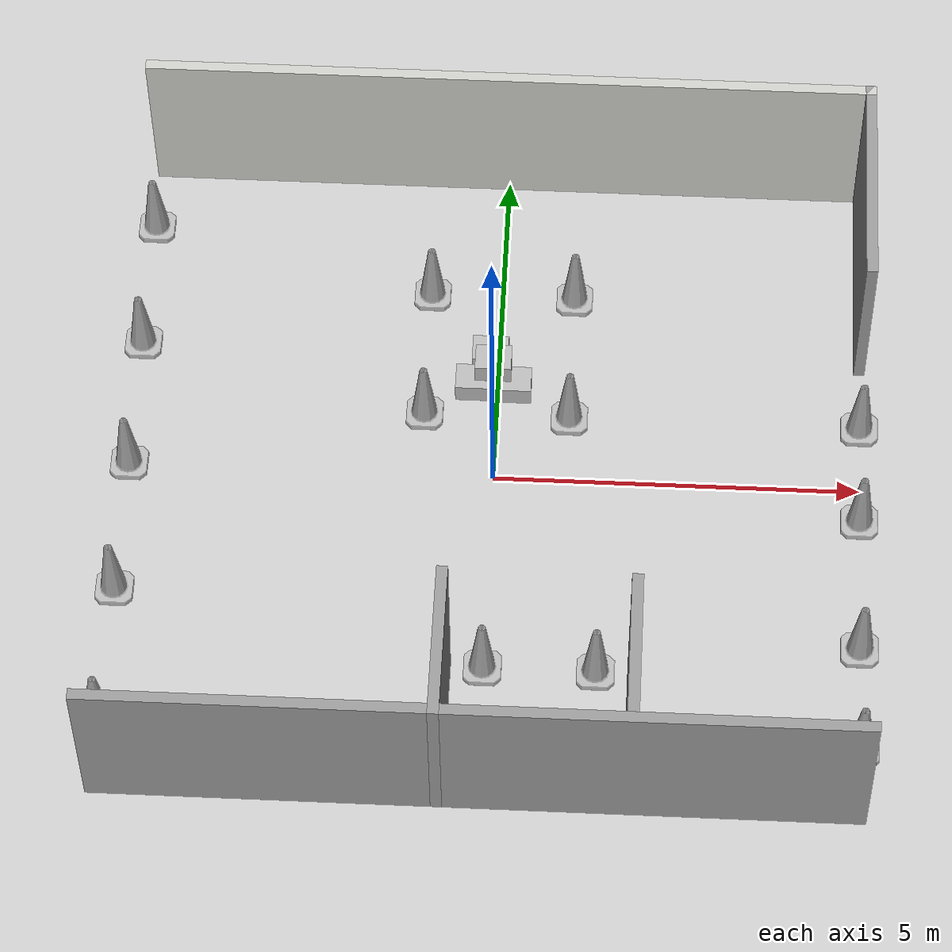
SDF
<sdf version="1.7">
 <world name="default">
  <light name="sun" type="directional">
   <pose>0 0 10 0 -0 0</pose>
   <diffuse>0.8 0.8 0.8 1</diffuse>
   <specular>0.2 0.2 0.2 1</specular>
   <attenuation>
    <range>1000</range>
    <constant>0.9</constant>
    <linear>0.01</linear>
    <quadratic>0.001</quadratic>
   </attenuation>
   <direction>-0.5 0.1 -0.9</direction>
   <spot><inner_angle>0</inner_angle><outer_angle>0</outer_angle><falloff>0</falloff></spot>
  </light>
  <model name="ground_plane">
   <static>1</static>
   <link name="link">
    <collision name="collision">
     <geometry><plane><normal>0 0 1</normal><size>100 100</size></plane></geometry>
     <surface>
      <contact><collide_bitmask>65535</collide_bitmask></contact>
      <friction><ode><mu>100</mu><mu2>50</mu2></ode></friction>
     </surface>
    </collision>
    <visual name="visual">
     <cast_shadows>0</cast_shadows>
     <geometry><plane><normal>0 0 1</normal><size>100 100</size></plane></geometry>
     <material>
      <script><uri>file://media/materials/scripts/gazebo.material</uri><name>Gazebo/Grey</name></script>
     </material>
    </visual>
   </link>
  </model>
  <physics type="ode">
   <real_time_update_rate>1000</real_time_update_rate>
   <max_step_size>0.001</max_step_size>
   <real_time_factor>1</real_time_factor>
   <ode>
    <solver>
     <type>quick</type>
     <iters>150</iters>
     <precon_iters>0</precon_iters>
     <sor>1.4</sor>
     <use_dynamic_moi_rescaling>1</use_dynamic_moi_rescaling>
    </solver>
    <constraints>
     <cfm>1e-05</cfm>
     <erp>0.2</erp>
     <contact_max_correcting_vel>2000</contact_max_correcting_vel>
     <contact_surface_layer>0.01</contact_surface_layer>
    </constraints>
   </ode>
  </physics>
  <scene><ambient>0.4 0.4 0.4 1</ambient><background>0.7 0.7 0.7 1</background><shadows>1</shadows></scene>
  <gravity>0 0 -9.8</gravity>
  <magnetic_field>6e-06 2.3e-05 -4.2e-05</magnetic_field>
  <atmosphere type="adiabatic"/>
  <spherical_coordinates>
   <surface_model>EARTH_WGS84</surface_model>
   <latitude_deg>0</latitude_deg>
   <longitude_deg>0</longitude_deg>
   <elevation>0</elevation>
   <heading_deg>0</heading_deg>
  </spherical_coordinates>
  <model name="Untitled">
   <link name="Wall_19">
    <collision name="Wall_19_Collision">
     <geometry><box><size>10.15 0.15 2.5</size></box></geometry>
     <pose>0 0 1.25 0 -0 0</pose>
    </collision>
    <visual name="Wall_19_Visual">
     <pose>0 0 1.25 0 -0 0</pose>
     <geometry><box><size>10.15 0.15 2.5</size></box></geometry>
     <material>
      <script><uri>file://media/materials/scripts/gazebo.material</uri><name>Gazebo/CeilingTiled</name></script>
      <ambient>1 1 1 1</ambient>
     </material>
     <meta><layer>0</layer></meta>
    </visual>
    <pose>-0 5 0 0 -0 0</pose>
   </link>
   <link name="Wall_26">
    <collision name="Wall_26_Collision">
     <geometry><box><size>10.15 0.15 2.5</size></box></geometry>
     <pose>0 0 1.25 0 -0 0</pose>
    </collision>
    <visual name="Wall_26_Visual">
     <pose>0 0 1.25 0 -0 0</pose>
     <geometry><box><size>10.15 0.15 2.5</size></box></geometry>
     <material>
      <script><uri>file://media/materials/scripts/gazebo.material</uri><name>Gazebo/Grey</name></script>
      <ambient>1 1 1 1</ambient>
     </material>
     <meta><layer>0</layer></meta>
    </visual>
    <pose>-0 -5 0 0 -0 3.14159</pose>
   </link>
   <link name="Wall_29">
    <collision name="Wall_29_Collision">
     <geometry><box><size>3.15 0.15 2.5</size></box></geometry>
     <pose>0 0 1.25 0 -0 0</pose>
    </collision>
    <visual name="Wall_29_Visual">
     <pose>0 0 1.25 0 -0 0</pose>
     <geometry><box><size>3.15 0.15 2.5</size></box></geometry>
     <material>
      <script><uri>file://media/materials/scripts/gazebo.material</uri><name>Gazebo/Grey</name></script>
      <ambient>1 1 1 1</ambient>
     </material>
     <meta><layer>0</layer></meta>
    </visual>
    <pose>5 3.5 0 0 -0 -1.5708</pose>
   </link>
   <link name="Wall_31">
    <collision name="Wall_31_Collision">
     <geometry><box><size>2.15 0.15 2.5</size></box></geometry>
     <pose>0 0 1.25 0 -0 0</pose>
    </collision>
    <visual name="Wall_31_Visual">
     <pose>0 0 1.25 0 -0 0</pose>
     <geometry><box><size>2.15 0.15 2.5</size></box></geometry>
     <material>
      <script><uri>file://media/materials/scripts/gazebo.material</uri><name>Gazebo/Grey</name></script>
      <ambient>1 1 1 1</ambient>
     </material>
     <meta><layer>0</layer></meta>
    </visual>
    <pose>2 -4 0 0 -0 -1.5708</pose>
   </link>
   <link name="Wall_33">
    <collision name="Wall_33_Collision">
     <geometry><box><size>2.15 0.15 2.5</size></box></geometry>
     <pose>0 0 1.25 0 -0 0</pose>
    </collision>
    <visual name="Wall_33_Visual">
     <pose>0 0 1.25 0 -0 0</pose>
     <geometry><box><size>2.15 0.15 2.5</size></box></geometry>
     <material>
      <script><uri>file://media/materials/scripts/gazebo.material</uri><name>Gazebo/Grey</name></script>
      <ambient>1 1 1 1</ambient>
     </material>
     <meta><layer>0</layer></meta>
    </visual>
    <pose>-0.5 -4 0 0 -0 1.5708</pose>
   </link>
   <static>1</static>
  </model>
  <model name="cardboard_box">
   <pose>-0.075772 1.6 0.447999 0 -0 0</pose>
   <link name="link">
    <inertial>
     <mass>2</mass>
     <inertia>
      <ixx>0.0416667</ixx>
      <ixy>0</ixy>
      <ixz>0</ixz>
      <iyy>0.0566667</iyy>
      <iyz>0</iyz>
      <izz>0.0683333</izz>
     </inertia>
    </inertial>
    <collision name="collision">
     <geometry><box><size>0.5 0.4 0.3</size></box></geometry>
     <surface>
      <friction><ode><mu>1</mu><mu2>1</mu2></ode></friction>
      <contact><ode><kp>1e+07</kp><kd>1</kd><min_depth>0.001</min_depth><max_vel>0.1</max_vel></ode></contact>
     </surface>
    </collision>
    <visual name="visual">
     <pose>0 0 -0.15 0 -0 0</pose>
     <geometry>
      <mesh><uri>model://cardboard_box/meshes/cardboard_box.dae</uri><scale>1.25932 1.00745 0.755591</scale></mesh>
     </geometry>
    </visual>
   </link>
  </model>
  <model name="cardboard_box_clone">
   <pose>0.204219 1.45053 0.148999 -0 -0 -0</pose>
   <link name="link">
    <inertial>
     <mass>2</mass>
     <inertia>
      <ixx>0.0416667</ixx>
      <ixy>0</ixy>
      <ixz>0</ixz>
      <iyy>0.0566667</iyy>
      <iyz>0</iyz>
      <izz>0.0683333</izz>
     </inertia>
    </inertial>
    <collision name="collision">
     <geometry><box><size>0.5 0.4 0.3</size></box></geometry>
     <surface>
      <friction><ode><mu>1</mu><mu2>1</mu2></ode></friction>
      <contact><ode><kp>1e+07</kp><kd>1</kd><min_depth>0.001</min_depth><max_vel>0.1</max_vel></ode></contact>
     </surface>
    </collision>
    <visual name="visual">
     <pose>0 0 -0.15 0 -0 0</pose>
     <geometry>
      <mesh><uri>model://cardboard_box/meshes/cardboard_box.dae</uri><scale>1.25932 1.00745 0.755591</scale></mesh>
     </geometry>
    </visual>
   </link>
  </model>
  <model name="cardboard_box_clone_0">
   <pose>-0.343051 1.46668 0.148999 0 -0 0</pose>
   <link name="link">
    <inertial>
     <mass>2</mass>
     <inertia>
      <ixx>0.0416667</ixx>
      <ixy>0</ixy>
      <ixz>0</ixz>
      <iyy>0.0566667</iyy>
      <iyz>0</iyz>
      <izz>0.0683333</izz>
     </inertia>
    </inertial>
    <collision name="collision">
     <geometry><box><size>0.5 0.4 0.3</size></box></geometry>
     <surface>
      <friction><ode><mu>1</mu><mu2>1</mu2></ode></friction>
      <contact><ode><kp>1e+07</kp><kd>1</kd><min_depth>0.001</min_depth><max_vel>0.1</max_vel></ode></contact>
     </surface>
    </collision>
    <visual name="visual">
     <pose>0 0 -0.15 0 -0 0</pose>
     <geometry>
      <mesh><uri>model://cardboard_box/meshes/cardboard_box.dae</uri><scale>1.25932 1.00745 0.755591</scale></mesh>
     </geometry>
    </visual>
   </link>
  </model>
  <model name="cardboard_box_clone_0_clone">
   <pose>-0.134875 1.95564 0.148999 1e-06 -0 0</pose>
   <link name="link">
    <inertial>
     <mass>2</mass>
     <inertia>
      <ixx>0.0416667</ixx>
      <ixy>0</ixy>
      <ixz>0</ixz>
      <iyy>0.0566667</iyy>
      <iyz>0</iyz>
      <izz>0.0683333</izz>
     </inertia>
    </inertial>
    <collision name="collision">
     <geometry><box><size>0.5 0.4 0.3</size></box></geometry>
     <surface>
      <friction><ode><mu>1</mu><mu2>1</mu2></ode></friction>
      <contact><ode><kp>1e+07</kp><kd>1</kd><min_depth>0.001</min_depth><max_vel>0.1</max_vel></ode></contact>
     </surface>
    </collision>
    <visual name="visual">
     <pose>0 0 -0.15 0 -0 0</pose>
     <geometry>
      <mesh><uri>model://cardboard_box/meshes/cardboard_box.dae</uri><scale>1.25932 1.00745 0.755591</scale></mesh>
     </geometry>
    </visual>
   </link>
  </model>
  <model name="Construction Cone_clone_clone">
   <link name="link">
    <collision name="collision">
     <geometry>
      <mesh><scale>10 10 10</scale><uri>model://construction_cone/meshes/construction_cone.dae</uri></mesh>
     </geometry>
    </collision>
    <visual name="visual">
     <geometry>
      <mesh><scale>10 10 10</scale><uri>model://construction_cone/meshes/construction_cone.dae</uri></mesh>
     </geometry>
    </visual>
    <inertial>
     <inertia><ixx>1</ixx><ixy>0</ixy><ixz>0</ixz><iyy>1</iyy><iyz>0</iyz><izz>1</izz></inertia>
     <mass>1</mass>
    </inertial>
   </link>
   <pose>-5 0 -4e-06 3e-06 3e-06 0</pose>
  </model>
  <model name="Construction Cone_clone_clone_0">
   <link name="link">
    <collision name="collision">
     <geometry>
      <mesh><scale>10 10 10</scale><uri>model://construction_cone/meshes/construction_cone.dae</uri></mesh>
     </geometry>
    </collision>
    <visual name="visual">
     <geometry>
      <mesh><scale>10 10 10</scale><uri>model://construction_cone/meshes/construction_cone.dae</uri></mesh>
     </geometry>
    </visual>
    <inertial>
     <inertia><ixx>1</ixx><ixy>0</ixy><ixz>0</ixz><iyy>1</iyy><iyz>0</iyz><izz>1</izz></inertia>
     <mass>1</mass>
    </inertial>
   </link>
   <pose>-5 -2 -0 0 -0 0</pose>
  </model>
  <model name="Construction Cone_clone_clone_1">
   <link name="link">
    <collision name="collision">
     <geometry>
      <mesh><scale>10 10 10</scale><uri>model://construction_cone/meshes/construction_cone.dae</uri></mesh>
     </geometry>
    </collision>
    <visual name="visual">
     <geometry>
      <mesh><scale>10 10 10</scale><uri>model://construction_cone/meshes/construction_cone.dae</uri></mesh>
     </geometry>
    </visual>
    <inertial>
     <inertia><ixx>1</ixx><ixy>0</ixy><ixz>0</ixz><iyy>1</iyy><iyz>0</iyz><izz>1</izz></inertia>
     <mass>1</mass>
    </inertial>
   </link>
   <pose>-5 -4 -0 -1e-06 1e-06 0</pose>
  </model>
  <model name="Construction Cone_clone_clone_2">
   <link name="link">
    <collision name="collision">
     <geometry>
      <mesh><scale>10 10 10</scale><uri>model://construction_cone/meshes/construction_cone.dae</uri></mesh>
     </geometry>
    </collision>
    <visual name="visual">
     <geometry>
      <mesh><scale>10 10 10</scale><uri>model://construction_cone/meshes/construction_cone.dae</uri></mesh>
     </geometry>
    </visual>
    <inertial>
     <inertia><ixx>1</ixx><ixy>0</ixy><ixz>0</ixz><iyy>1</iyy><iyz>0</iyz><izz>1</izz></inertia>
     <mass>1</mass>
    </inertial>
   </link>
   <pose>1 3 0 0 -0 0</pose>
  </model>
  <model name="Construction Cone_clone_clone_3">
   <link name="link">
    <collision name="collision">
     <geometry>
      <mesh><scale>10 10 10</scale><uri>model://construction_cone/meshes/construction_cone.dae</uri></mesh>
     </geometry>
    </collision>
    <visual name="visual">
     <geometry>
      <mesh><scale>10 10 10</scale><uri>model://construction_cone/meshes/construction_cone.dae</uri></mesh>
     </geometry>
    </visual>
    <inertial>
     <inertia><ixx>1</ixx><ixy>0</ixy><ixz>0</ixz><iyy>1</iyy><iyz>0</iyz><izz>1</izz></inertia>
     <mass>1</mass>
    </inertial>
   </link>
   <pose>1 1 -0 1e-06 1e-06 0</pose>
  </model>
  <model name="Construction Cone_clone_clone_4">
   <link name="link">
    <collision name="collision">
     <geometry>
      <mesh><scale>10 10 10</scale><uri>model://construction_cone/meshes/construction_cone.dae</uri></mesh>
     </geometry>
    </collision>
    <visual name="visual">
     <geometry>
      <mesh><scale>10 10 10</scale><uri>model://construction_cone/meshes/construction_cone.dae</uri></mesh>
     </geometry>
    </visual>
    <inertial>
     <inertia><ixx>1</ixx><ixy>0</ixy><ixz>0</ixz><iyy>1</iyy><iyz>0</iyz><izz>1</izz></inertia>
     <mass>1</mass>
    </inertial>
   </link>
   <pose>-1 1 -0 0 -0 0</pose>
  </model>
  <model name="Construction Cone_clone_clone_5">
   <link name="link">
    <collision name="collision">
     <geometry>
      <mesh><scale>10 10 10</scale><uri>model://construction_cone/meshes/construction_cone.dae</uri></mesh>
     </geometry>
    </collision>
    <visual name="visual">
     <geometry>
      <mesh><scale>10 10 10</scale><uri>model://construction_cone/meshes/construction_cone.dae</uri></mesh>
     </geometry>
    </visual>
    <inertial>
     <inertia><ixx>1</ixx><ixy>0</ixy><ixz>0</ixz><iyy>1</iyy><iyz>0</iyz><izz>1</izz></inertia>
     <mass>1</mass>
    </inertial>
   </link>
   <pose>-1 3 -0 0 -0 0</pose>
  </model>
  <model name="Construction Cone_clone_clone_6">
   <link name="link">
    <collision name="collision">
     <geometry>
      <mesh><scale>10 10 10</scale><uri>model://construction_cone/meshes/construction_cone.dae</uri></mesh>
     </geometry>
    </collision>
    <visual name="visual">
     <geometry>
      <mesh><scale>10 10 10</scale><uri>model://construction_cone/meshes/construction_cone.dae</uri></mesh>
     </geometry>
    </visual>
    <inertial>
     <inertia><ixx>1</ixx><ixy>0</ixy><ixz>0</ixz><iyy>1</iyy><iyz>0</iyz><izz>1</izz></inertia>
     <mass>1</mass>
    </inertial>
   </link>
   <pose>1.5 -3 -0 0 -0 0</pose>
  </model>
  <model name="Construction Cone_clone_clone_7">
   <link name="link">
    <collision name="collision">
     <geometry>
      <mesh><scale>10 10 10</scale><uri>model://construction_cone/meshes/construction_cone.dae</uri></mesh>
     </geometry>
    </collision>
    <visual name="visual">
     <geometry>
      <mesh><scale>10 10 10</scale><uri>model://construction_cone/meshes/construction_cone.dae</uri></mesh>
     </geometry>
    </visual>
    <inertial>
     <inertia><ixx>1</ixx><ixy>0</ixy><ixz>0</ixz><iyy>1</iyy><iyz>0</iyz><izz>1</izz></inertia>
     <mass>1</mass>
    </inertial>
   </link>
   <pose>-0 -3 0 0 -0 0</pose>
  </model>
  <model name="Construction Cone_clone_clone_8">
   <link name="link">
    <collision name="collision">
     <geometry>
      <mesh><scale>10 10 10</scale><uri>model://construction_cone/meshes/construction_cone.dae</uri></mesh>
     </geometry>
    </collision>
    <visual name="visual">
     <geometry>
      <mesh><scale>10 10 10</scale><uri>model://construction_cone/meshes/construction_cone.dae</uri></mesh>
     </geometry>
    </visual>
    <inertial>
     <inertia><ixx>1</ixx><ixy>0</ixy><ixz>0</ixz><iyy>1</iyy><iyz>0</iyz><izz>1</izz></inertia>
     <mass>1</mass>
    </inertial>
   </link>
   <pose>5 -4 -0 -1e-06 1e-06 0</pose>
  </model>
  <model name="Construction Cone_clone_clone_9">
   <link name="link">
    <collision name="collision">
     <geometry>
      <mesh><scale>10 10 10</scale><uri>model://construction_cone/meshes/construction_cone.dae</uri></mesh>
     </geometry>
    </collision>
    <visual name="visual">
     <geometry>
      <mesh><scale>10 10 10</scale><uri>model://construction_cone/meshes/construction_cone.dae</uri></mesh>
     </geometry>
    </visual>
    <inertial>
     <inertia><ixx>1</ixx><ixy>0</ixy><ixz>0</ixz><iyy>1</iyy><iyz>0</iyz><izz>1</izz></inertia>
     <mass>1</mass>
    </inertial>
   </link>
   <pose>5 -2.5 -9e-06 0 -0 0</pose>
  </model>
  <model name="Construction Cone_clone_clone_10">
   <link name="link">
    <collision name="collision">
     <geometry>
      <mesh><scale>10 10 10</scale><uri>model://construction_cone/meshes/construction_cone.dae</uri></mesh>
     </geometry>
    </collision>
    <visual name="visual">
     <geometry>
      <mesh><scale>10 10 10</scale><uri>model://construction_cone/meshes/construction_cone.dae</uri></mesh>
     </geometry>
    </visual>
    <inertial>
     <inertia><ixx>1</ixx><ixy>0</ixy><ixz>0</ixz><iyy>1</iyy><iyz>0</iyz><izz>1</izz></inertia>
     <mass>1</mass>
    </inertial>
   </link>
   <pose>5 1 -0 0 -0 0</pose>
  </model>
  <model name="Construction Cone_clone_clone_11">
   <link name="link">
    <collision name="collision">
     <geometry>
      <mesh><scale>10 10 10</scale><uri>model://construction_cone/meshes/construction_cone.dae</uri></mesh>
     </geometry>
    </collision>
    <visual name="visual">
     <geometry>
      <mesh><scale>10 10 10</scale><uri>model://construction_cone/meshes/construction_cone.dae</uri></mesh>
     </geometry>
    </visual>
    <inertial>
     <inertia><ixx>1</ixx><ixy>0</ixy><ixz>0</ixz><iyy>1</iyy><iyz>0</iyz><izz>1</izz></inertia>
     <mass>1</mass>
    </inertial>
   </link>
   <pose>5 -0.5 -1e-06 -3e-06 -3e-06 0</pose>
  </model>
  <model name="cardboard_box_clone_0_clone_0">
   <pose>0.852234 -4.24803 0.148999 1e-06 -0 0</pose>
   <link name="link">
    <inertial>
     <mass>2</mass>
     <inertia>
      <ixx>0.0416667</ixx>
      <ixy>0</ixy>
      <ixz>0</ixz>
      <iyy>0.0566667</iyy>
      <iyz>0</iyz>
      <izz>0.0683333</izz>
     </inertia>
    </inertial>
    <collision name="collision">
     <geometry><box><size>0.5 0.4 0.3</size></box></geometry>
     <surface>
      <friction><ode><mu>1</mu><mu2>1</mu2></ode></friction>
      <contact><ode><kp>1e+07</kp><kd>1</kd><min_depth>0.001</min_depth><max_vel>0.1</max_vel></ode></contact>
     </surface>
    </collision>
    <visual name="visual">
     <pose>0 0 -0.15 0 -0 0</pose>
     <geometry>
      <mesh><uri>model://cardboard_box/meshes/cardboard_box.dae</uri><scale>1.25932 1.00745 0.755591</scale></mesh>
     </geometry>
    </visual>
   </link>
  </model>
  <model name="cardboard_box_clone_1">
   <pose>0.870918 -4.30326 0.447998 2e-06 -0 0</pose>
   <link name="link">
    <inertial>
     <mass>2</mass>
     <inertia>
      <ixx>0.0416667</ixx>
      <ixy>0</ixy>
      <ixz>0</ixz>
      <iyy>0.0566667</iyy>
      <iyz>0</iyz>
      <izz>0.0683333</izz>
     </inertia>
    </inertial>
    <collision name="collision">
     <geometry><box><size>0.5 0.4 0.3</size></box></geometry>
     <surface>
      <friction><ode><mu>1</mu><mu2>1</mu2></ode></friction>
      <contact><ode><kp>1e+07</kp><kd>1</kd><min_depth>0.001</min_depth><max_vel>0.1</max_vel></ode></contact>
     </surface>
    </collision>
    <visual name="visual">
     <pose>0 0 -0.15 0 -0 0</pose>
     <geometry>
      <mesh><uri>model://cardboard_box/meshes/cardboard_box.dae</uri><scale>1.25932 1.00745 0.755591</scale></mesh>
     </geometry>
    </visual>
   </link>
  </model>
  <model name="Construction Cone_clone_clone_clone">
   <link name="link">
    <collision name="collision">
     <geometry>
      <mesh><scale>10 10 10</scale><uri>model://construction_cone/meshes/construction_cone.dae</uri></mesh>
     </geometry>
    </collision>
    <visual name="visual">
     <geometry>
      <mesh><scale>10 10 10</scale><uri>model://construction_cone/meshes/construction_cone.dae</uri></mesh>
     </geometry>
    </visual>
    <inertial>
     <inertia><ixx>1</ixx><ixy>0</ixy><ixz>0</ixz><iyy>1</iyy><iyz>0</iyz><izz>1</izz></inertia>
     <mass>1</mass>
    </inertial>
   </link>
   <pose>-5 4 0 0 -0 0</pose>
  </model>
  <model name="Construction Cone_clone_clone_clone_clone">
   <link name="link">
    <collision name="collision">
     <geometry>
      <mesh><scale>10 10 10</scale><uri>model://construction_cone/meshes/construction_cone.dae</uri></mesh>
     </geometry>
    </collision>
    <visual name="visual">
     <geometry>
      <mesh><scale>10 10 10</scale><uri>model://construction_cone/meshes/construction_cone.dae</uri></mesh>
     </geometry>
    </visual>
    <inertial>
     <inertia><ixx>1</ixx><ixy>0</ixy><ixz>0</ixz><iyy>1</iyy><iyz>0</iyz><izz>1</izz></inertia>
     <mass>1</mass>
    </inertial>
   </link>
   <pose>-5 2 0 0 -0 0</pose>
  </model>
 </world>
</sdf>
